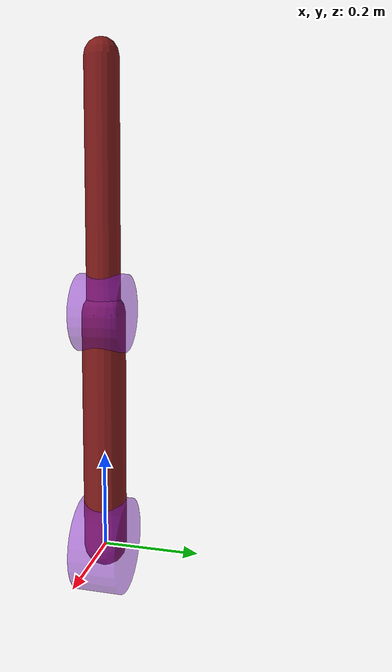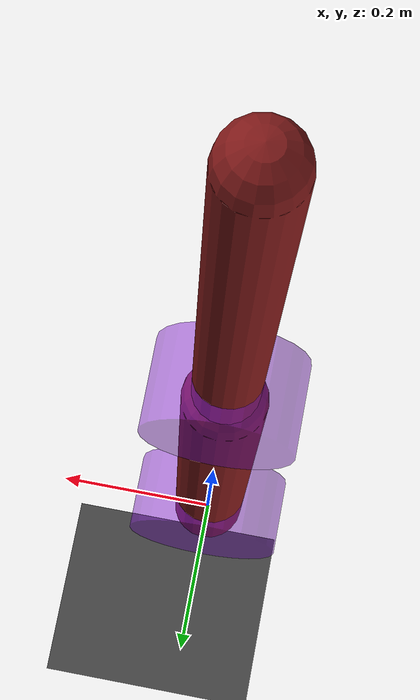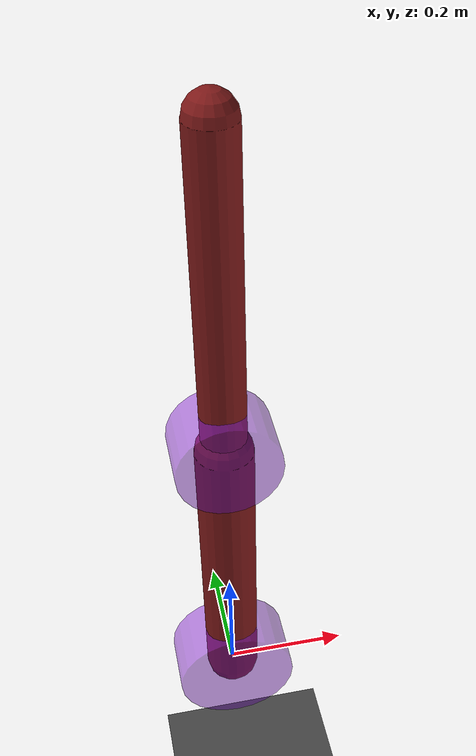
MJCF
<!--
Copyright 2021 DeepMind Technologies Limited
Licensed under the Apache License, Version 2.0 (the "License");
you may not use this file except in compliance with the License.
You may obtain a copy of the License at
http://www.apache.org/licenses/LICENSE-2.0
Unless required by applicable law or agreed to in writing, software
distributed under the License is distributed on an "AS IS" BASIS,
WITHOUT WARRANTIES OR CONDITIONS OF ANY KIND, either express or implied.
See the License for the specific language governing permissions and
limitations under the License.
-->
<mujoco model="Pendulum">
        <option timestep="0.005"/>

        <size njmax="50" nconmax="10" nstack="200"/>

        <visual>
                <rgba haze=".3 .3 .3 1"/>
        </visual>

        <default>
                <joint type="hinge" pos="0 0 0" axis="0 0 1" damping="0.1"/>
                <motor ctrllimited="true" ctrlrange="-25 25"/>
        </default>

        <asset>
                <texture type="skybox" builtin="gradient" rgb1="0.6 0.6 0.6" rgb2="0 0 0" width="512" height="512"/>

                <texture name="texplane" type="2d" builtin="checker" rgb1=".25 .25 .25" rgb2=".3 .3 .3" width="512" height="512" mark="cross" markrgb=".8 .8 .8"/>

                <material name="matplane" reflectance="0.3" texture="texplane" texrepeat="1 1" texuniform="true"/>
        </asset>

        <worldbody>
                <geom name="floor" pos="0 0 -0.5" size="0 0 1" type="plane" material="matplane"/>

                <light directional="true" diffuse=".8 .8 .8" specular=".2 .2 .2" pos="0 0 5" dir="0 0 -1"/>

                <body pos="0 0 0" quat="0.5 0.5 -0.5 0.5">
                        <geom name="upper arm" type="capsule" size="0.045" fromto="0 0 0  0.5 0 0" rgba=".5 .1 .1 1"/>
                        <joint name="shoulder"/>
                        <geom name="shoulder" type="cylinder" pos="0 0 0" size=".1 .05" rgba=".5 .1 .8 .5" mass="0" group="1"/>

                        <body pos="0.5 0 0">
                                <geom name="forearm" type="capsule" size="0.035" fromto="0 0 0  0.5 0 0" rgba=".5 .1 .1 1"/>
                                <joint name="elbow"/>
                                <geom name="elbow" type="cylinder" pos="0 0 0" size=".08 .05" rgba=".5 .1 .8 .5" mass="0" group="1"/>
                        </body>
                </body>
        </worldbody>

        <actuator>
                <motor name="shoulder" joint="shoulder"/>
                <motor name="elbow" joint="elbow" />
        </actuator>
</mujoco>
